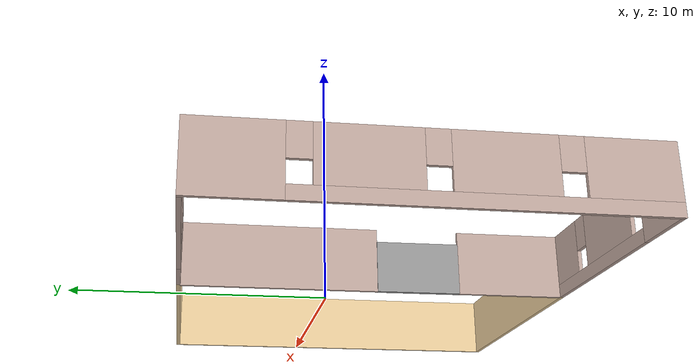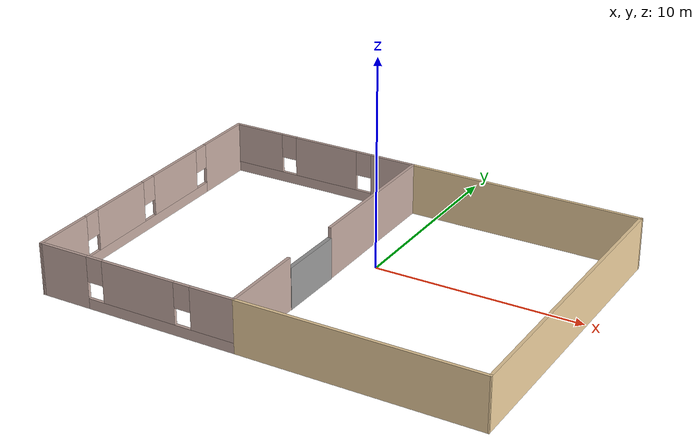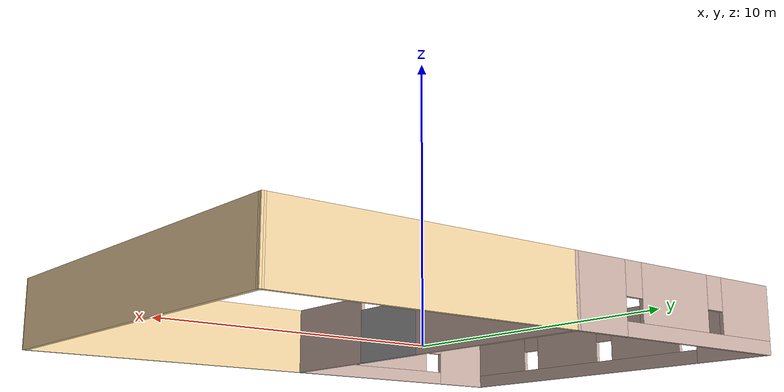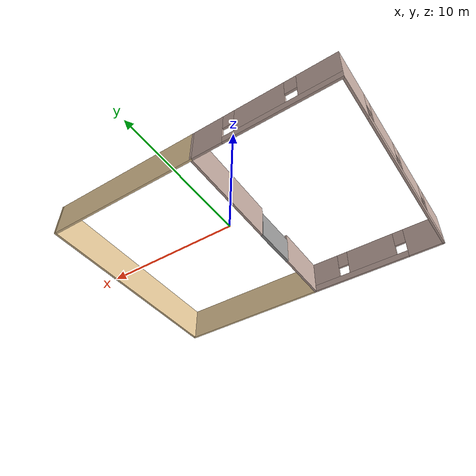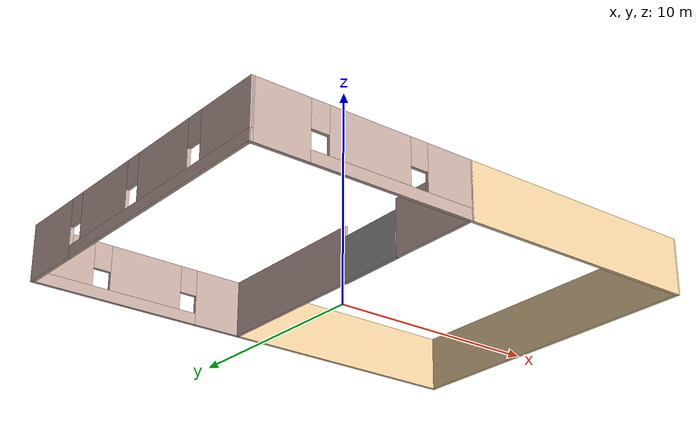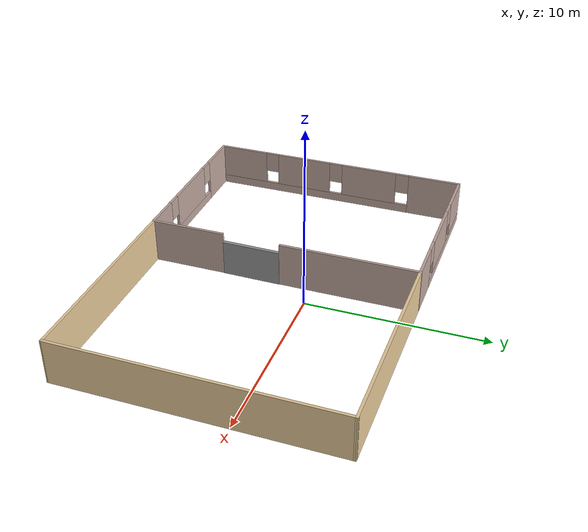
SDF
<?xml version='1.0'?>
<sdf version='1.7'>
  <model name='mybuilding'>
    <pose>-0.545797 -1.74578 0 0 -0 0</pose>
    <link name='Door_4'>
      <collision name='Door_4_Collision'>
        <geometry>
          <box>
            <size>3.24984 0.2 2</size>
          </box>
        </geometry>
        <pose>0 0 1 0 -0 0</pose>
      </collision>
      <visual name='Door_4_Visual'>
        <pose>0 0 1 0 -0 0</pose>
        <geometry>
          <box>
            <size>3.24984 0.2 2</size>
          </box>
        </geometry>
        <material>
          <script>
            <uri>file://media/materials/scripts/gazebo.material</uri>
            <name>Gazebo/Grey</name>
          </script>
        </material>
      </visual>
      <pose>-0.770749 -1.74362 0 0 -0 -1.58189</pose>
    </link>
    <link name='Wall_10'>
      <pose>-5.67505 7.54995 0 0 -0 3.14159</pose>
      <visual name='Wall_10_Visual_0'>
        <pose>-3.83933 0 1.25 0 -0 0</pose>
        <geometry>
          <box>
            <size>2.32133 0.15 2.5</size>
          </box>
        </geometry>
        <material>
          <script>
            <uri>file://media/materials/scripts/gazebo.material</uri>
            <name>Gazebo/Grey</name>
          </script>
          <ambient>0.760784 0.662745 0.627451 1</ambient>
        </material>
        <meta>
          <layer>0</layer>
        </meta>
      </visual>
      <collision name='Wall_10_Collision_0'>
        <geometry>
          <box>
            <size>2.32133 0.15 2.5</size>
          </box>
        </geometry>
        <pose>-3.83933 0 1.25 0 -0 0</pose>
      </collision>
      <visual name='Wall_10_Visual_1'>
        <pose>1.16067 0 0.25 0 -0 0</pose>
        <geometry>
          <box>
            <size>7.67867 0.15 0.5</size>
          </box>
        </geometry>
        <material>
          <script>
            <uri>file://media/materials/scripts/gazebo.material</uri>
            <name>Gazebo/Grey</name>
          </script>
          <ambient>0.760784 0.662745 0.627451 1</ambient>
        </material>
        <meta>
          <layer>0</layer>
        </meta>
      </visual>
      <collision name='Wall_10_Collision_1'>
        <geometry>
          <box>
            <size>7.67867 0.15 0.5</size>
          </box>
        </geometry>
        <pose>1.16067 0 0.25 0 -0 0</pose>
      </collision>
      <visual name='Wall_10_Visual_2'>
        <pose>-0.179835 0 1.5 0 -0 0</pose>
        <geometry>
          <box>
            <size>3.39766 0.15 2</size>
          </box>
        </geometry>
        <material>
          <script>
            <uri>file://media/materials/scripts/gazebo.material</uri>
            <name>Gazebo/Grey</name>
          </script>
          <ambient>0.760784 0.662745 0.627451 1</ambient>
        </material>
        <meta>
          <layer>0</layer>
        </meta>
      </visual>
      <collision name='Wall_10_Collision_2'>
        <geometry>
          <box>
            <size>3.39766 0.15 2</size>
          </box>
        </geometry>
        <pose>-0.179835 0 1.5 0 -0 0</pose>
      </collision>
      <visual name='Wall_10_Visual_3'>
        <pose>3.6595 0 1.5 0 -0 0</pose>
        <geometry>
          <box>
            <size>2.681 0.15 2</size>
          </box>
        </geometry>
        <material>
          <script>
            <uri>file://media/materials/scripts/gazebo.material</uri>
            <name>Gazebo/Grey</name>
          </script>
          <ambient>0.760784 0.662745 0.627451 1</ambient>
        </material>
        <meta>
          <layer>0</layer>
        </meta>
      </visual>
      <collision name='Wall_10_Collision_3'>
        <geometry>
          <box>
            <size>2.681 0.15 2</size>
          </box>
        </geometry>
        <pose>3.6595 0 1.5 0 -0 0</pose>
      </collision>
      <visual name='Wall_10_Visual_4'>
        <pose>-2.27867 0 1.9 0 -0 0</pose>
        <geometry>
          <box>
            <size>0.8 0.15 1.2</size>
          </box>
        </geometry>
        <material>
          <script>
            <uri>file://media/materials/scripts/gazebo.material</uri>
            <name>Gazebo/Grey</name>
          </script>
          <ambient>0.760784 0.662745 0.627451 1</ambient>
        </material>
        <meta>
          <layer>0</layer>
        </meta>
      </visual>
      <collision name='Wall_10_Collision_4'>
        <geometry>
          <box>
            <size>0.8 0.15 1.2</size>
          </box>
        </geometry>
        <pose>-2.27867 0 1.9 0 -0 0</pose>
      </collision>
      <visual name='Wall_10_Visual_5'>
        <pose>1.919 0 1.9 0 -0 0</pose>
        <geometry>
          <box>
            <size>0.8 0.15 1.2</size>
          </box>
        </geometry>
        <material>
          <script>
            <uri>file://media/materials/scripts/gazebo.material</uri>
            <name>Gazebo/Grey</name>
          </script>
          <ambient>0.760784 0.662745 0.627451 1</ambient>
        </material>
        <meta>
          <layer>0</layer>
        </meta>
      </visual>
      <collision name='Wall_10_Collision_5'>
        <geometry>
          <box>
            <size>0.8 0.15 1.2</size>
          </box>
        </geometry>
        <pose>1.919 0 1.9 0 -0 0</pose>
      </collision>
    </link>
    <link name='Wall_11'>
      <pose>-10.6001 -5.3e-05 0 0 -0 -1.5708</pose>
      <visual name='Wall_11_Visual_0'>
        <pose>-6.07843 0 1.25 0 -0 0</pose>
        <geometry>
          <box>
            <size>3.09313 0.15 2.5</size>
          </box>
        </geometry>
        <material>
          <script>
            <uri>file://media/materials/scripts/gazebo.material</uri>
            <name>Gazebo/Grey</name>
          </script>
          <ambient>0.760784 0.662745 0.627451 1</ambient>
        </material>
        <meta>
          <layer>0</layer>
        </meta>
      </visual>
      <collision name='Wall_11_Collision_0'>
        <geometry>
          <box>
            <size>3.09313 0.15 2.5</size>
          </box>
        </geometry>
        <pose>-6.07843 0 1.25 0 -0 0</pose>
      </collision>
      <visual name='Wall_11_Visual_1'>
        <pose>1.54657 0 0.25 0 -0 0</pose>
        <geometry>
          <box>
            <size>12.1569 0.15 0.5</size>
          </box>
        </geometry>
        <material>
          <script>
            <uri>file://media/materials/scripts/gazebo.material</uri>
            <name>Gazebo/Grey</name>
          </script>
          <ambient>0.760784 0.662745 0.627451 1</ambient>
        </material>
        <meta>
          <layer>0</layer>
        </meta>
      </visual>
      <collision name='Wall_11_Collision_1'>
        <geometry>
          <box>
            <size>12.1569 0.15 0.5</size>
          </box>
        </geometry>
        <pose>1.54657 0 0.25 0 -0 0</pose>
      </collision>
      <visual name='Wall_11_Visual_2'>
        <pose>-2.04327 0 1.5 0 -0 0</pose>
        <geometry>
          <box>
            <size>3.37719 0.15 2</size>
          </box>
        </geometry>
        <material>
          <script>
            <uri>file://media/materials/scripts/gazebo.material</uri>
            <name>Gazebo/Grey</name>
          </script>
          <ambient>0.760784 0.662745 0.627451 1</ambient>
        </material>
        <meta>
          <layer>0</layer>
        </meta>
      </visual>
      <collision name='Wall_11_Collision_2'>
        <geometry>
          <box>
            <size>3.37719 0.15 2</size>
          </box>
        </geometry>
        <pose>-2.04327 0 1.5 0 -0 0</pose>
      </collision>
      <visual name='Wall_11_Visual_3'>
        <pose>2.12367 0 1.5 0 -0 0</pose>
        <geometry>
          <box>
            <size>3.35671 0.15 2</size>
          </box>
        </geometry>
        <material>
          <script>
            <uri>file://media/materials/scripts/gazebo.material</uri>
            <name>Gazebo/Grey</name>
          </script>
          <ambient>0.760784 0.662745 0.627451 1</ambient>
        </material>
        <meta>
          <layer>0</layer>
        </meta>
      </visual>
      <collision name='Wall_11_Collision_3'>
        <geometry>
          <box>
            <size>3.35671 0.15 2</size>
          </box>
        </geometry>
        <pose>2.12367 0 1.5 0 -0 0</pose>
      </collision>
      <visual name='Wall_11_Visual_4'>
        <pose>6.11351 0 1.5 0 -0 0</pose>
        <geometry>
          <box>
            <size>3.02297 0.15 2</size>
          </box>
        </geometry>
        <material>
          <script>
            <uri>file://media/materials/scripts/gazebo.material</uri>
            <name>Gazebo/Grey</name>
          </script>
          <ambient>0.760784 0.662745 0.627451 1</ambient>
        </material>
        <meta>
          <layer>0</layer>
        </meta>
      </visual>
      <collision name='Wall_11_Collision_4'>
        <geometry>
          <box>
            <size>3.02297 0.15 2</size>
          </box>
        </geometry>
        <pose>6.11351 0 1.5 0 -0 0</pose>
      </collision>
      <visual name='Wall_11_Visual_5'>
        <pose>-4.13187 0 1.9 0 -0 0</pose>
        <geometry>
          <box>
            <size>0.8 0.15 1.2</size>
          </box>
        </geometry>
        <material>
          <script>
            <uri>file://media/materials/scripts/gazebo.material</uri>
            <name>Gazebo/Grey</name>
          </script>
          <ambient>0.760784 0.662745 0.627451 1</ambient>
        </material>
        <meta>
          <layer>0</layer>
        </meta>
      </visual>
      <collision name='Wall_11_Collision_5'>
        <geometry>
          <box>
            <size>0.8 0.15 1.2</size>
          </box>
        </geometry>
        <pose>-4.13187 0 1.9 0 -0 0</pose>
      </collision>
      <visual name='Wall_11_Visual_6'>
        <pose>0.04532 0 1.9 0 -0 0</pose>
        <geometry>
          <box>
            <size>0.8 0.15 1.2</size>
          </box>
        </geometry>
        <material>
          <script>
            <uri>file://media/materials/scripts/gazebo.material</uri>
            <name>Gazebo/Grey</name>
          </script>
          <ambient>0.760784 0.662745 0.627451 1</ambient>
        </material>
        <meta>
          <layer>0</layer>
        </meta>
      </visual>
      <collision name='Wall_11_Collision_6'>
        <geometry>
          <box>
            <size>0.8 0.15 1.2</size>
          </box>
        </geometry>
        <pose>0.04532 0 1.9 0 -0 0</pose>
      </collision>
      <visual name='Wall_11_Visual_7'>
        <pose>4.20203 0 1.9 0 -0 0</pose>
        <geometry>
          <box>
            <size>0.8 0.15 1.2</size>
          </box>
        </geometry>
        <material>
          <script>
            <uri>file://media/materials/scripts/gazebo.material</uri>
            <name>Gazebo/Grey</name>
          </script>
          <ambient>0.760784 0.662745 0.627451 1</ambient>
        </material>
        <meta>
          <layer>0</layer>
        </meta>
      </visual>
      <collision name='Wall_11_Collision_7'>
        <geometry>
          <box>
            <size>0.8 0.15 1.2</size>
          </box>
        </geometry>
        <pose>4.20203 0 1.9 0 -0 0</pose>
      </collision>
    </link>
    <link name='Wall_13'>
      <pose>-5.6911 -7.54664 0 0 -0 0.000695</pose>
      <visual name='Wall_13_Visual_0'>
        <pose>-3.72543 0 1.25 0 -0 0</pose>
        <geometry>
          <box>
            <size>2.51706 0.15 2.5</size>
          </box>
        </geometry>
        <material>
          <script>
            <uri>file://media/materials/scripts/gazebo.material</uri>
            <name>Gazebo/Grey</name>
          </script>
          <ambient>0.760784 0.662745 0.627451 1</ambient>
        </material>
        <meta>
          <layer>0</layer>
        </meta>
      </visual>
      <collision name='Wall_13_Collision_0'>
        <geometry>
          <box>
            <size>2.51706 0.15 2.5</size>
          </box>
        </geometry>
        <pose>-3.72543 0 1.25 0 -0 0</pose>
      </collision>
      <visual name='Wall_13_Visual_1'>
        <pose>1.25853 0 0.25 0 -0 0</pose>
        <geometry>
          <box>
            <size>7.45085 0.15 0.5</size>
          </box>
        </geometry>
        <material>
          <script>
            <uri>file://media/materials/scripts/gazebo.material</uri>
            <name>Gazebo/Grey</name>
          </script>
          <ambient>0.760784 0.662745 0.627451 1</ambient>
        </material>
        <meta>
          <layer>0</layer>
        </meta>
      </visual>
      <collision name='Wall_13_Collision_1'>
        <geometry>
          <box>
            <size>7.45085 0.15 0.5</size>
          </box>
        </geometry>
        <pose>1.25853 0 0.25 0 -0 0</pose>
      </collision>
      <visual name='Wall_13_Visual_2'>
        <pose>0.1651 0 1.5 0 -0 0</pose>
        <geometry>
          <box>
            <size>3.664 0.15 2</size>
          </box>
        </geometry>
        <material>
          <script>
            <uri>file://media/materials/scripts/gazebo.material</uri>
            <name>Gazebo/Grey</name>
          </script>
          <ambient>0.760784 0.662745 0.627451 1</ambient>
        </material>
        <meta>
          <layer>0</layer>
        </meta>
      </visual>
      <collision name='Wall_13_Collision_2'>
        <geometry>
          <box>
            <size>3.664 0.15 2</size>
          </box>
        </geometry>
        <pose>0.1651 0 1.5 0 -0 0</pose>
      </collision>
      <visual name='Wall_13_Visual_3'>
        <pose>3.89053 0 1.5 0 -0 0</pose>
        <geometry>
          <box>
            <size>2.18685 0.15 2</size>
          </box>
        </geometry>
        <material>
          <script>
            <uri>file://media/materials/scripts/gazebo.material</uri>
            <name>Gazebo/Grey</name>
          </script>
          <ambient>0.760784 0.662745 0.627451 1</ambient>
        </material>
        <meta>
          <layer>0</layer>
        </meta>
      </visual>
      <collision name='Wall_13_Collision_3'>
        <geometry>
          <box>
            <size>2.18685 0.15 2</size>
          </box>
        </geometry>
        <pose>3.89053 0 1.5 0 -0 0</pose>
      </collision>
      <visual name='Wall_13_Visual_4'>
        <pose>-2.0669 0 1.9 0 -0 0</pose>
        <geometry>
          <box>
            <size>0.8 0.15 1.2</size>
          </box>
        </geometry>
        <material>
          <script>
            <uri>file://media/materials/scripts/gazebo.material</uri>
            <name>Gazebo/Grey</name>
          </script>
          <ambient>0.760784 0.662745 0.627451 1</ambient>
        </material>
        <meta>
          <layer>0</layer>
        </meta>
      </visual>
      <collision name='Wall_13_Collision_4'>
        <geometry>
          <box>
            <size>0.8 0.15 1.2</size>
          </box>
        </geometry>
        <pose>-2.0669 0 1.9 0 -0 0</pose>
      </collision>
      <visual name='Wall_13_Visual_5'>
        <pose>2.3971 0 1.9 0 -0 0</pose>
        <geometry>
          <box>
            <size>0.8 0.15 1.2</size>
          </box>
        </geometry>
        <material>
          <script>
            <uri>file://media/materials/scripts/gazebo.material</uri>
            <name>Gazebo/Grey</name>
          </script>
          <ambient>0.760784 0.662745 0.627451 1</ambient>
        </material>
        <meta>
          <layer>0</layer>
        </meta>
      </visual>
      <collision name='Wall_13_Collision_5'>
        <geometry>
          <box>
            <size>0.8 0.15 1.2</size>
          </box>
        </geometry>
        <pose>2.3971 0 1.9 0 -0 0</pose>
      </collision>
    </link>
    <link name='Wall_15'>
      <collision name='Wall_15_Collision'>
        <geometry>
          <box>
            <size>11.5 0.15 2.5</size>
          </box>
        </geometry>
        <pose>0 0 1.25 0 -0 0</pose>
      </collision>
      <visual name='Wall_15_Visual'>
        <pose>0 0 1.25 0 -0 0</pose>
        <geometry>
          <box>
            <size>11.5 0.15 2.5</size>
          </box>
        </geometry>
        <material>
          <script>
            <uri>file://media/materials/scripts/gazebo.material</uri>
            <name>Gazebo/Grey</name>
          </script>
          <ambient>0.921569 0.807843 0.615686 1</ambient>
        </material>
        <meta>
          <layer>0</layer>
        </meta>
      </visual>
      <pose>4.89285 -7.54323 0 0 -0 0</pose>
    </link>
    <link name='Wall_18'>
      <collision name='Wall_18_Collision'>
        <geometry>
          <box>
            <size>11.5 0.15 2.5</size>
          </box>
        </geometry>
        <pose>0 0 1.25 0 -0 0</pose>
      </collision>
      <visual name='Wall_18_Visual'>
        <pose>0 0 1.25 0 -0 0</pose>
        <geometry>
          <box>
            <size>11.5 0.15 2.5</size>
          </box>
        </geometry>
        <material>
          <script>
            <uri>file://media/materials/scripts/gazebo.material</uri>
            <name>Gazebo/Grey</name>
          </script>
          <ambient>0.921569 0.807843 0.615686 1</ambient>
        </material>
        <meta>
          <layer>0</layer>
        </meta>
      </visual>
      <pose>4.92495 7.54995 0 0 -0 0</pose>
    </link>
    <link name='Wall_20'>
      <collision name='Wall_20_Collision'>
        <geometry>
          <box>
            <size>15.2432 0.15 2.5</size>
          </box>
        </geometry>
        <pose>0 0 1.25 0 -0 0</pose>
      </collision>
      <visual name='Wall_20_Visual'>
        <pose>0 0 1.25 0 -0 0</pose>
        <geometry>
          <box>
            <size>15.2432 0.15 2.5</size>
          </box>
        </geometry>
        <material>
          <script>
            <uri>file://media/materials/scripts/gazebo.material</uri>
            <name>Gazebo/Grey</name>
          </script>
          <ambient>0.921569 0.807843 0.615686 1</ambient>
        </material>
        <meta>
          <layer>0</layer>
        </meta>
      </visual>
      <pose>10.5839 0.003357 0 0 -0 -1.57292</pose>
    </link>
    <link name='Wall_7'>
      <collision name='Wall_7_Collision'>
        <geometry>
          <box>
            <size>4.25 0.15 2.5</size>
          </box>
        </geometry>
        <pose>0 0 1.25 0 -0 0</pose>
      </collision>
      <visual name='Wall_7_Visual'>
        <pose>0 0 1.25 0 -0 0</pose>
        <geometry>
          <box>
            <size>4.25 0.15 2.5</size>
          </box>
        </geometry>
        <material>
          <script>
            <uri>file://media/materials/scripts/gazebo.material</uri>
            <name>Gazebo/Grey</name>
          </script>
          <ambient>0.760784 0.662745 0.627451 1</ambient>
        </material>
        <meta>
          <layer>0</layer>
        </meta>
      </visual>
      <pose>-0.782147 -5.49323 0 0 -0 1.5708</pose>
    </link>
    <link name='Wall_9'>
      <collision name='Wall_9_Collision'>
        <geometry>
          <box>
            <size>7.75 0.15 2.5</size>
          </box>
        </geometry>
        <pose>0 0 1.25 0 -0 0</pose>
      </collision>
      <visual name='Wall_9_Visual'>
        <pose>0 0 1.25 0 -0 0</pose>
        <geometry>
          <box>
            <size>7.75 0.15 2.5</size>
          </box>
        </geometry>
        <material>
          <script>
            <uri>file://media/materials/scripts/gazebo.material</uri>
            <name>Gazebo/Grey</name>
          </script>
          <ambient>0.760784 0.662745 0.627451 1</ambient>
        </material>
        <meta>
          <layer>0</layer>
        </meta>
      </visual>
      <pose>-0.750053 3.74995 0 0 -0 1.5708</pose>
    </link>
    <static>1</static>
  </model>
</sdf>
